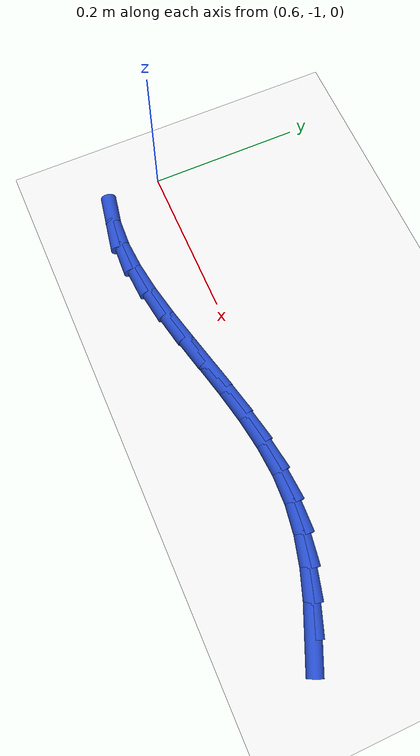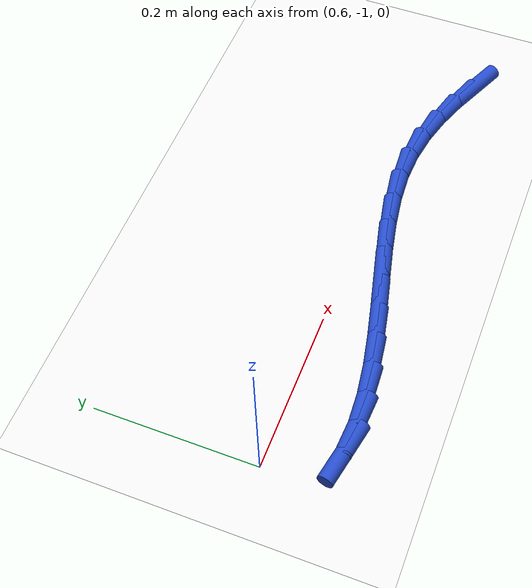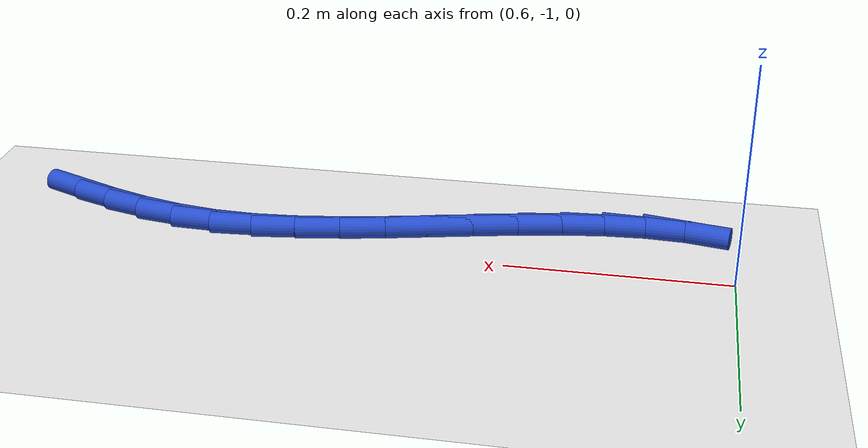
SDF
<sdf version="1.6">
 <world name="default">
  <model name="ground_plane">
   <static>1</static>
   <link name="link">
    <collision name="collision">
     <geometry><plane><normal>0 0 1</normal><size>100 100</size></plane></geometry>
     <surface><friction><ode><mu>100</mu><mu2>50</mu2></ode></friction></surface>
    </collision>
    <visual name="visual">
     <cast_shadows>0</cast_shadows>
     <geometry><plane><normal>0 0 1</normal><size>100 100</size></plane></geometry>
     <material>
      <script><uri>file://media/materials/scripts/gazebo.material</uri><name>Gazebo/WhiteGlow</name></script>
     </material>
    </visual>
   </link>
  </model>
  <model name="line">
   <link name="link_142">
    <pose>1.2130149702991653 -1.0659241062097824 0.01 0 1.57 -0.41300881232165226</pose>
    <collision name="collision">
     <geometry><cylinder><radius>0.01</radius><length>0.08</length></cylinder></geometry>
    </collision>
    <visual name="visual">
     <material>
      <script><name>Gazebo/Blue</name><uri>file://media/materials/scripts/gazebo.material</uri></script>
     </material>
     <geometry><cylinder><radius>0.01</radius><length>0.08</length></cylinder></geometry>
    </visual>
   </link>
   <link name="link_143">
    <pose>1.1772565593105269 -1.050254302459007 0.01 0 1.57 -0.34812143490293007</pose>
    <collision name="collision">
     <geometry><cylinder><radius>0.01</radius><length>0.08</length></cylinder></geometry>
    </collision>
    <visual name="visual">
     <material>
      <script><name>Gazebo/Blue</name><uri>file://media/materials/scripts/gazebo.material</uri></script>
     </material>
     <geometry><cylinder><radius>0.01</radius><length>0.08</length></cylinder></geometry>
    </visual>
   </link>
   <link name="link_144">
    <pose>1.141575851145193 -1.037305735103594 0.01 0 1.57 -0.26266400370955006</pose>
    <collision name="collision">
     <geometry><cylinder><radius>0.01</radius><length>0.08</length></cylinder></geometry>
    </collision>
    <visual name="visual">
     <material>
      <script><name>Gazebo/Blue</name><uri>file://media/materials/scripts/gazebo.material</uri></script>
     </material>
     <geometry><cylinder><radius>0.01</radius><length>0.08</length></cylinder></geometry>
    </visual>
   </link>
   <link name="link_145">
    <pose>1.1056248424309432 -1.027639368091544 0.01 0 1.57 -0.15791162129169756</pose>
    <collision name="collision">
     <geometry><cylinder><radius>0.01</radius><length>0.08</length></cylinder></geometry>
    </collision>
    <visual name="visual">
     <material>
      <script><name>Gazebo/Blue</name><uri>file://media/materials/scripts/gazebo.material</uri></script>
     </material>
     <geometry><cylinder><radius>0.01</radius><length>0.08</length></cylinder></geometry>
    </visual>
   </link>
   <link name="link_146">
    <pose>1.0690555297955546 -1.0218161653708584 0.01 0 1.57 -0.03879835491577017</pose>
    <collision name="collision">
     <geometry><cylinder><radius>0.01</radius><length>0.08</length></cylinder></geometry>
    </collision>
    <visual name="visual">
     <material>
      <script><name>Gazebo/Blue</name><uri>file://media/materials/scripts/gazebo.material</uri></script>
     </material>
     <geometry><cylinder><radius>0.01</radius><length>0.08</length></cylinder></geometry>
    </visual>
   </link>
   <link name="link_147">
    <pose>1.0315349307082227 -1.0203596969641746 0.01 0 1.57 0.06968506583174075</pose>
    <collision name="collision">
     <geometry><cylinder><radius>0.01</radius><length>0.08</length></cylinder></geometry>
    </collision>
    <visual name="visual">
     <material>
      <script><name>Gazebo/Blue</name><uri>file://media/materials/scripts/gazebo.material</uri></script>
     </material>
     <geometry><cylinder><radius>0.01</radius><length>0.08</length></cylinder></geometry>
    </visual>
   </link>
   <link name="link_148">
    <pose>0.9930298267167613 -1.0230472793872787 0.01 0 1.57 0.14973612943468384</pose>
    <collision name="collision">
     <geometry><cylinder><radius>0.01</radius><length>0.08</length></cylinder></geometry>
    </collision>
    <visual name="visual">
     <material>
      <script><name>Gazebo/Blue</name><uri>file://media/materials/scripts/gazebo.material</uri></script>
     </material>
     <geometry><cylinder><radius>0.01</radius><length>0.08</length></cylinder></geometry>
    </visual>
   </link>
   <link name="link_149">
    <pose>0.9537833716474798 -1.0289682088201904 0.01 0 1.57 0.20394450815572093</pose>
    <collision name="collision">
     <geometry><cylinder><radius>0.01</radius><length>0.08</length></cylinder></geometry>
    </collision>
    <visual name="visual">
     <material>
      <script><name>Gazebo/Blue</name><uri>file://media/materials/scripts/gazebo.material</uri></script>
     </material>
     <geometry><cylinder><radius>0.01</radius><length>0.08</length></cylinder></geometry>
    </visual>
   </link>
   <link name="link_150">
    <pose>0.9140490521249933 -1.0371860582575239 0.01 0 1.57 0.2352103281505032</pose>
    <collision name="collision">
     <geometry><cylinder><radius>0.01</radius><length>0.08</length></cylinder></geometry>
    </collision>
    <visual name="visual">
     <material>
      <script><name>Gazebo/Blue</name><uri>file://media/materials/scripts/gazebo.material</uri></script>
     </material>
     <geometry><cylinder><radius>0.01</radius><length>0.08</length></cylinder></geometry>
    </visual>
   </link>
   <link name="link_151">
    <pose>0.8740803547739175 -1.0467644006938917 0.01 0 1.57 0.24533228440381244</pose>
    <collision name="collision">
     <geometry><cylinder><radius>0.01</radius><length>0.08</length></cylinder></geometry>
    </collision>
    <visual name="visual">
     <material>
      <script><name>Gazebo/Blue</name><uri>file://media/materials/scripts/gazebo.material</uri></script>
     </material>
     <geometry><cylinder><radius>0.01</radius><length>0.08</length></cylinder></geometry>
    </visual>
   </link>
   <link name="link_152">
    <pose>0.8341307662188694 -1.0567668091239082 0.01 0 1.57 0.2347719802863557</pose>
    <collision name="collision">
     <geometry><cylinder><radius>0.01</radius><length>0.08</length></cylinder></geometry>
    </collision>
    <visual name="visual">
     <material>
      <script><name>Gazebo/Blue</name><uri>file://media/materials/scripts/gazebo.material</uri></script>
     </material>
     <geometry><cylinder><radius>0.01</radius><length>0.08</length></cylinder></geometry>
    </visual>
   </link>
   <link name="link_153">
    <pose>0.7944537730844625 -1.0662568565421868 0.01 0 1.57 0.20257415727592973</pose>
    <collision name="collision">
     <geometry><cylinder><radius>0.01</radius><length>0.08</length></cylinder></geometry>
    </collision>
    <visual name="visual">
     <material>
      <script><name>Gazebo/Blue</name><uri>file://media/materials/scripts/gazebo.material</uri></script>
     </material>
     <geometry><cylinder><radius>0.01</radius><length>0.08</length></cylinder></geometry>
    </visual>
   </link>
   <link name="link_154">
    <pose>0.7553028619953137 -1.0742981159433413 0.01 0 1.57 0.146348963230122</pose>
    <collision name="collision">
     <geometry><cylinder><radius>0.01</radius><length>0.08</length></cylinder></geometry>
    </collision>
    <visual name="visual">
     <material>
      <script><name>Gazebo/Blue</name><uri>file://media/materials/scripts/gazebo.material</uri></script>
     </material>
     <geometry><cylinder><radius>0.01</radius><length>0.08</length></cylinder></geometry>
    </visual>
   </link>
   <link name="link_155">
    <pose>0.7169315195760391 -1.0799541603219853 0.01 0 1.57 0.062439069350711515</pose>
    <collision name="collision">
     <geometry><cylinder><radius>0.01</radius><length>0.08</length></cylinder></geometry>
    </collision>
    <visual name="visual">
     <material>
      <script><name>Gazebo/Blue</name><uri>file://media/materials/scripts/gazebo.material</uri></script>
     </material>
     <geometry><cylinder><radius>0.01</radius><length>0.08</length></cylinder></geometry>
    </visual>
   </link>
   <link name="link_156">
    <pose>0.679593232451254 -1.082288562672732 0.01 0 1.57 -0.053305206573988094</pose>
    <collision name="collision">
     <geometry><cylinder><radius>0.01</radius><length>0.08</length></cylinder></geometry>
    </collision>
    <visual name="visual">
     <material>
      <script><name>Gazebo/Blue</name><uri>file://media/materials/scripts/gazebo.material</uri></script>
     </material>
     <geometry><cylinder><radius>0.01</radius><length>0.08</length></cylinder></geometry>
    </visual>
   </link>
   <link name="link_157">
    <pose>0.6435414624269621 -1.0803649933735264 0.01 0 1.57 -0.19537512640887036</pose>
    <collision name="collision">
     <geometry><cylinder><radius>0.01</radius><length>0.08</length></cylinder></geometry>
    </collision>
    <visual name="visual">
     <material>
      <script><name>Gazebo/Blue</name><uri>file://media/materials/scripts/gazebo.material</uri></script>
     </material>
     <geometry><cylinder><radius>0.01</radius><length>0.08</length></cylinder></geometry>
    </visual>
   </link>
  </model>
 </world>
</sdf>
